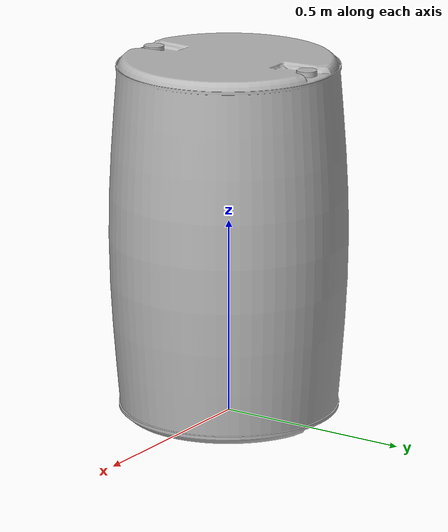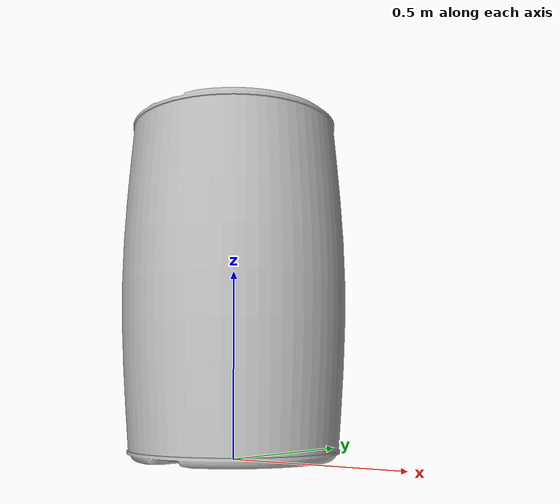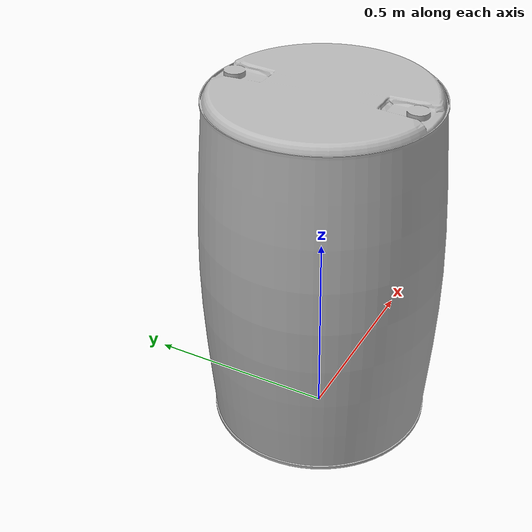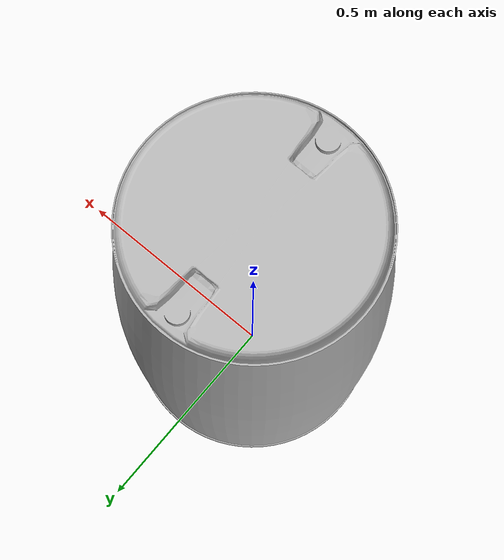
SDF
<?xml version="1.0"?>
<sdf version="1.4">
  <model name="barrel3_90">
    <static>true</static>
    <link name="link">
      <collision name="collision">
        <geometry>
          <mesh>
             <uri>model://barrel3_90/models/model.dae</uri>

          </mesh>
        </geometry>
      </collision>
      <visual name="visual">
         <geometry>
          <mesh>
		<uri>model://barrel3_90/models/model.dae</uri>

          </mesh>
        </geometry>
      </visual>
    </link>
  </model>
</sdf>
